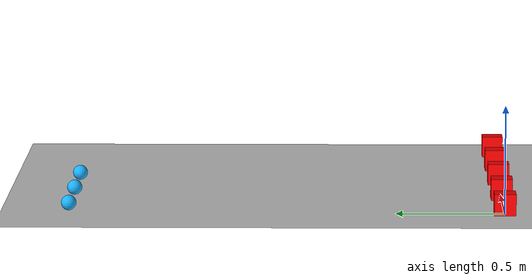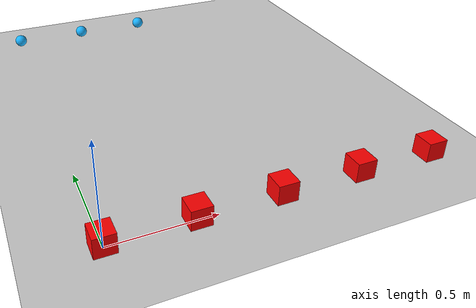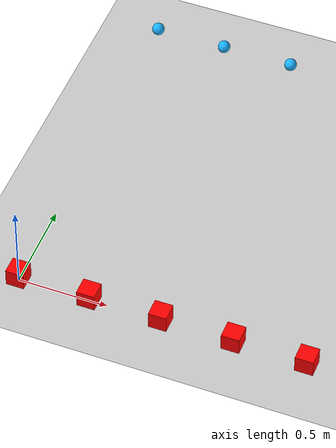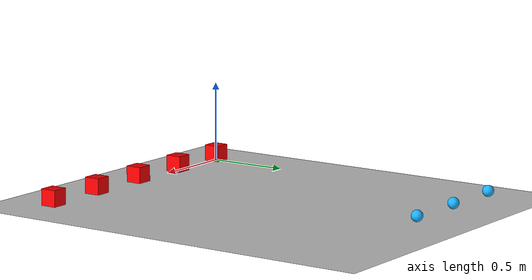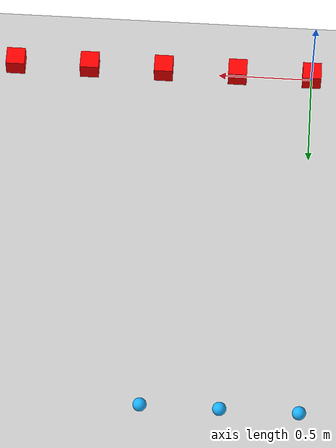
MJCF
<mujoco model="five_robots">
  <compiler angle="radian"/>
  <option timestep="0.01" gravity="0 0 0"/>

  <worldbody>
    <light name="sun" pos="0 0 5"/>
    <geom name="floor" type="plane" size="5 5 0.1" rgba="0.8 0.8 0.8 1"/>

    <body name="robot_0" pos="0.0 0.0 0.05">
      <joint name="robot_0_x" type="slide" axis="1 0 0"/>
      <joint name="robot_0_y" type="slide" axis="0 1 0"/>

      <geom
        name="robot_0_box"
        type="box"
        size="0.05 0.05 0.05"
        mass="1.0"
        rgba="1 0 0 1"
      />
    </body>

    <body name="robot_1" pos="0.4 0.0 0.05">
      <joint name="robot_1_x" type="slide" axis="1 0 0"/>
      <joint name="robot_1_y" type="slide" axis="0 1 0"/>

      <geom
        name="robot_1_box"
        type="box"
        size="0.05 0.05 0.05"
        mass="1.0"
        rgba="1 0 0 1"
      />
    </body>

    <body name="robot_2" pos="0.8 0.0 0.05">
      <joint name="robot_2_x" type="slide" axis="1 0 0"/>
      <joint name="robot_2_y" type="slide" axis="0 1 0"/>

      <geom
        name="robot_2_box"
        type="box"
        size="0.05 0.05 0.05"
        mass="1.0"
        rgba="1 0 0 1"
      />
    </body>

    <body name="robot_3" pos="1.2000000000000002 0.0 0.05">
      <joint name="robot_3_x" type="slide" axis="1 0 0"/>
      <joint name="robot_3_y" type="slide" axis="0 1 0"/>

      <geom
        name="robot_3_box"
        type="box"
        size="0.05 0.05 0.05"
        mass="1.0"
        rgba="1 0 0 1"
      />
    </body>

    <body name="robot_4" pos="1.6 0.0 0.05">
      <joint name="robot_4_x" type="slide" axis="1 0 0"/>
      <joint name="robot_4_y" type="slide" axis="0 1 0"/>

      <geom
        name="robot_4_box"
        type="box"
        size="0.05 0.05 0.05"
        mass="1.0"
        rgba="1 0 0 1"
      />
    </body>

    <body name="ball_0" pos="0.0 2.0 0.05">
      <joint name="ball_0_x" type="slide" axis="1 0 0"/>
      <joint name="ball_0_y" type="slide" axis="0 1 0"/>

      <geom
        name="ball_0_geom"
        type="sphere"
        size="0.035"
        mass="0.03"
        rgba="0.1 0.7 1.0 1"
      />
    </body>

    <body name="ball_1" pos="0.4 2.0 0.05">
      <joint name="ball_1_x" type="slide" axis="1 0 0"/>
      <joint name="ball_1_y" type="slide" axis="0 1 0"/>

      <geom
        name="ball_1_geom"
        type="sphere"
        size="0.035"
        mass="0.03"
        rgba="0.1 0.7 1.0 1"
      />
    </body>

    <body name="ball_2" pos="0.8 2.0 0.05">
      <joint name="ball_2_x" type="slide" axis="1 0 0"/>
      <joint name="ball_2_y" type="slide" axis="0 1 0"/>

      <geom
        name="ball_2_geom"
        type="sphere"
        size="0.035"
        mass="0.03"
        rgba="0.1 0.7 1.0 1"
      />
    </body>

  </worldbody>

  <actuator>

    <velocity name="robot_0_vx" joint="robot_0_x" kv="10" ctrllimited="true" ctrlrange="-0.2 0.2"/>
    <velocity name="robot_0_vy" joint="robot_0_y" kv="10" ctrllimited="true" ctrlrange="-0.2 0.2"/>

    <velocity name="robot_1_vx" joint="robot_1_x" kv="10" ctrllimited="true" ctrlrange="-0.2 0.2"/>
    <velocity name="robot_1_vy" joint="robot_1_y" kv="10" ctrllimited="true" ctrlrange="-0.2 0.2"/>

    <velocity name="robot_2_vx" joint="robot_2_x" kv="10" ctrllimited="true" ctrlrange="-0.2 0.2"/>
    <velocity name="robot_2_vy" joint="robot_2_y" kv="10" ctrllimited="true" ctrlrange="-0.2 0.2"/>

    <velocity name="robot_3_vx" joint="robot_3_x" kv="10" ctrllimited="true" ctrlrange="-0.2 0.2"/>
    <velocity name="robot_3_vy" joint="robot_3_y" kv="10" ctrllimited="true" ctrlrange="-0.2 0.2"/>

    <velocity name="robot_4_vx" joint="robot_4_x" kv="10" ctrllimited="true" ctrlrange="-0.2 0.2"/>
    <velocity name="robot_4_vy" joint="robot_4_y" kv="10" ctrllimited="true" ctrlrange="-0.2 0.2"/>

  </actuator>
</mujoco>
